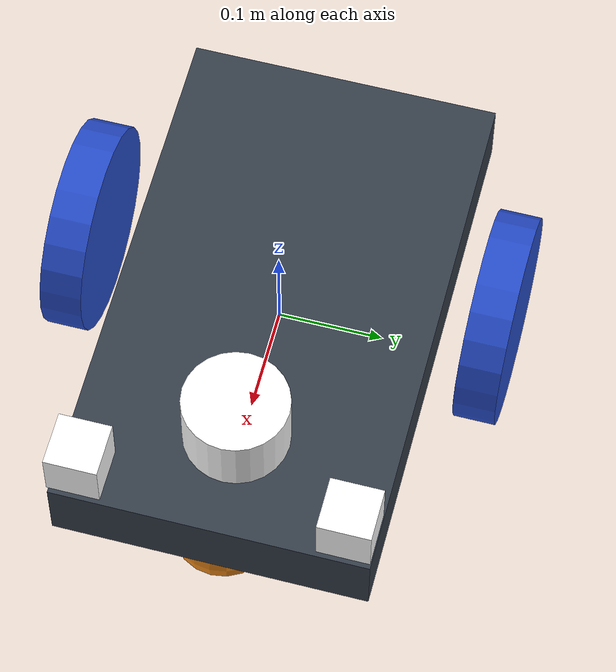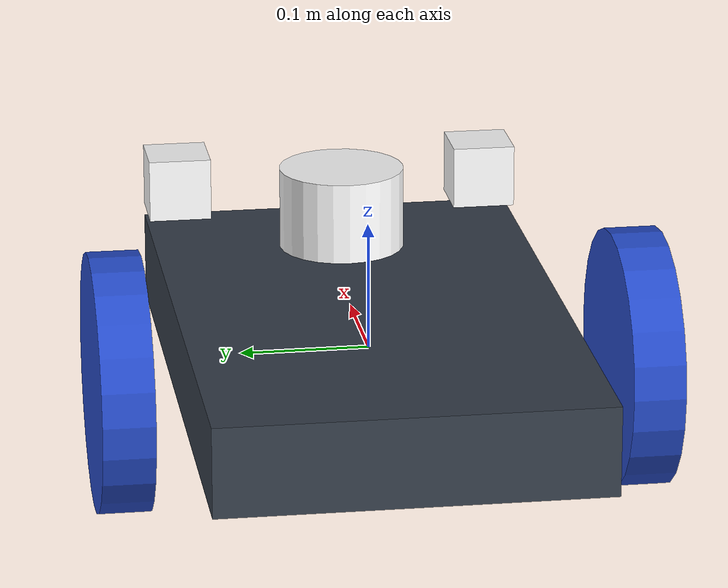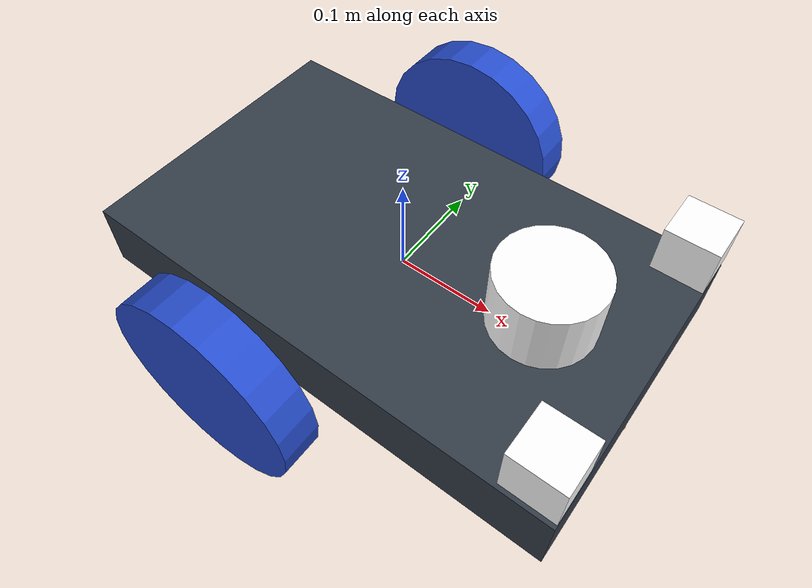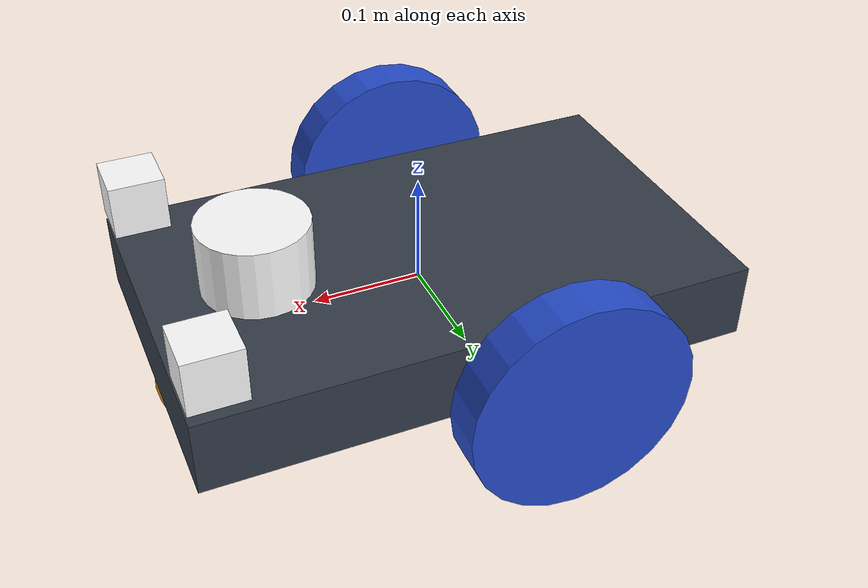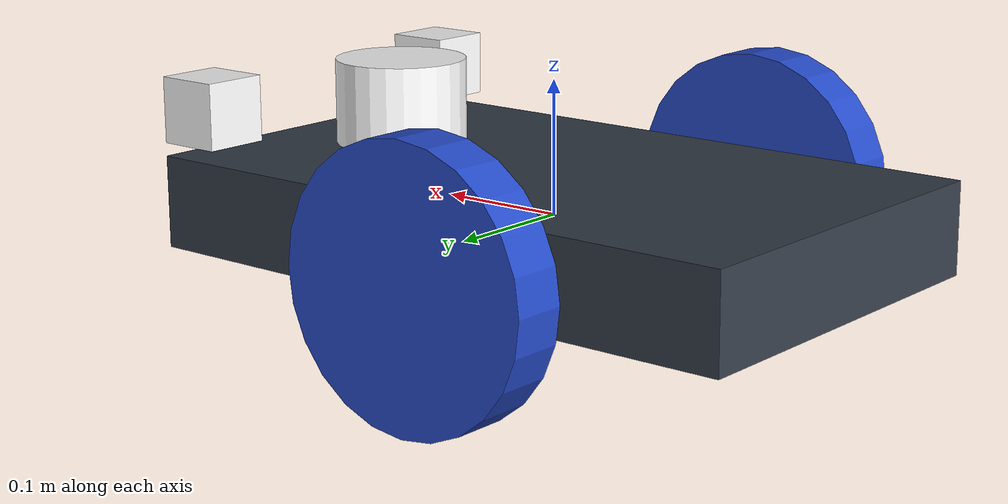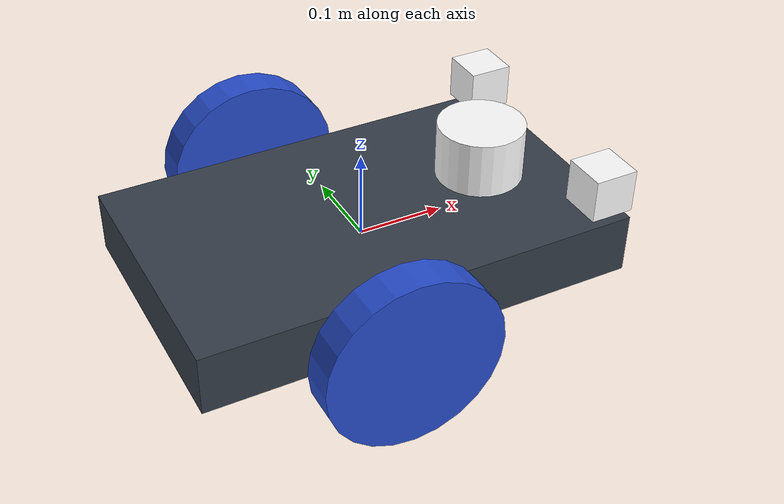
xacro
<?xml version="1.0" ?>
<robot name="m2wr"
    xmlns:xacro="http://www.ros.org/wiki/xacro">

    <xacro:include filename="$(find m2wr_description)/urdf/materials.xacro" />
    <xacro:include filename="$(find m2wr_description)/urdf/m2wr_manual.gazebo" />
    <xacro:include filename="$(find m2wr_description)/urdf/macros.xacro" />

    <link name="link_chassis">
        <!-- pose and inertial -->
        <pose>0 0 0.1 0 0 0</pose>
        <inertial>
            <mass value="5"/>
            <origin rpy="0 0 0" xyz="0 0 0.1"/>
            <inertia ixx="0.0395416666667" ixy="0" ixz="0" iyy="0.106208333333" iyz="0" izz="0.106208333333"/>
        </inertial>
        <!-- body -->
        <collision name="collision_chassis">
            <geometry>
                <box size="0.5 0.3 0.07"/>
            </geometry>
        </collision>
        <visual>
            <origin rpy="0 0 0" xyz="0 0 0"/>
            <geometry>
                <box size="0.5 0.3 0.07"/>
            </geometry>
            <material name="blue"/>
        </visual>
        <!-- caster front -->
        <collision name="caster_front_collision">
            <origin rpy=" 0 0 0" xyz="0.35 0 -0.05"/>
            <geometry>
                <sphere radius="0.05"/>
            </geometry>
            <surface>
                <friction>
                    <ode>
                        <mu>0</mu>
                        <mu2>0</mu2>
                        <slip1>1.0</slip1>
                        <slip2>1.0</slip2>
                    </ode>
                </friction>
            </surface>
        </collision>
        <visual name="caster_front_visual">
            <origin rpy=" 0 0 0" xyz="0.2 0 -0.05"/>
            <geometry>
                <sphere radius="0.05"/>
            </geometry>
        </visual>
    </link>

    <link name="sensor_laser">
        <inertial>
            <origin xyz="0 0 0" rpy="0 0 0" />
            <mass value="1" />
            <xacro:cylinder_inertia mass="1" r="0.05" l="0.1" />
        </inertial>

        <visual>
            <origin xyz="0 0 0" rpy="0 0 0" />
            <geometry>
                <cylinder radius="0.05" length="0.1"/>
            </geometry>
            <material name="white" />
        </visual>

        <collision>
            <origin xyz="0 0 0" rpy="0 0 0"/>
            <geometry>
                <cylinder radius="0.05" length="0.1"/>
            </geometry>
        </collision>
    </link>

    <joint name="joint_sensor_laser" type="fixed">
        <origin xyz="0.15 0 0.05" rpy="0 0 0"/>
        <parent link="link_chassis"/>
        <child link="sensor_laser"/>
    </joint>

    <xacro:link_wheel name="link_right_wheel" />
    <xacro:joint_wheel name="joint_right_wheel" child="link_right_wheel" origin_xyz="-0.05 -0.20 0" />

    <xacro:link_wheel name="link_left_wheel" />
    <xacro:joint_wheel name="joint_left_wheel" child="link_left_wheel" origin_xyz="-0.05 0.20 0" />

    <link name="left_light_sensor">
        <inertial>
            <origin xyz="0 0 0" rpy="0 0 0" />
            <mass value="1" />
            <xacro:cylinder_inertia mass="1" r="0.05" l="0.1" />
        </inertial>

        <visual>
            <origin xyz="0 0 0" rpy="0 0 0" />
            <geometry>
                <box size="0.05 0.05 0.05"/>
            </geometry>
            <material name="white" />
        </visual>

    </link>

    <joint name="joint_left_light_sensor" type="fixed">
        <origin xyz="0.225 0.125 0.07" rpy="0 0 0"/>
        <parent link="link_chassis"/>
        <child link="left_light_sensor"/>
    </joint>

    <link name="right_light_sensor">
        <inertial>
            <origin xyz="0 0 0" rpy="0 0 0" />
            <mass value="1" />
            <xacro:cylinder_inertia mass="1" r="0.05" l="0.1" />
        </inertial>

        <visual>
            <origin xyz="0 0 0" rpy="0 0 0" />
            <geometry>
                <box size="0.05 0.05 0.05"/>
            </geometry>
            <material name="white" />
        </visual>

    </link>

    <joint name="joint_right_light_sensor" type="fixed">
        <origin xyz="0.225 -0.125 0.07" rpy="0 0 0"/>
        <parent link="link_chassis"/>
        <child link="right_light_sensor"/>
    </joint>

</robot>

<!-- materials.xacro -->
<robot xmlns:xacro="http://www.ros.org/wiki/xacro">
    <material name="black">
        <color rgba="0.0 0.0 0.0 1.0"/>
    </material>
    <material name="blue">
        <color rgba="0.203125 0.23828125 0.28515625 1.0"/>
    </material>
    <material name="green">
        <color rgba="0.0 0.8 0.0 1.0"/>
    </material>
    <material name="grey">
        <color rgba="0.2 0.2 0.2 1.0"/>
    </material>
    <material name="orange">
        <color rgba="1.0 0.423529411765 0.0392156862745 1.0"/>
    </material>
    <material name="brown">
        <color rgba="0.870588235294 0.811764705882 0.764705882353 1.0"/>
    </material>
    <material name="red">
        <color rgba="0.80078125 0.12890625 0.1328125 1.0"/>
    </material>
    <material name="white">
        <color rgba="1.0 1.0 1.0 1.0"/>
    </material>
</robot>

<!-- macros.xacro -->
<robot xmlns:xacro="http://www.ros.org/wiki/xacro">
    <xacro:macro name="link_wheel" params="name">
        <link name="${name}">
            <inertial>
                <mass value="0.2"/>
                <origin rpy="0 1.5707 1.5707" xyz="0 0 0"/>
                <inertia ixx="0.000526666666667" ixy="0" ixz="0" iyy="0.000526666666667" iyz="0" izz="0.001"/>
            </inertial>
            <collision name="link_right_wheel_collision">
                <origin rpy="0 1.5707 1.5707" xyz="0 0 0"/>
                <geometry>
                    <cylinder length="0.04" radius="0.1"/>
                </geometry>
                <surface>
                    <friction>
                        <ode>
                            <mu>1.0</mu>
                            <mu2>1.0</mu2>
                        </ode>
                    </friction>
                </surface>
            </collision>
            <visual name="${name}_visual">
                <origin rpy="0 1.5707 1.5707" xyz="0 0 0"/>
                <geometry>
                    <cylinder length="0.04" radius="0.1"/>
                </geometry>
            </visual>
        </link>
    </xacro:macro>

    <xacro:macro name="joint_wheel" params="name child origin_xyz">
        <joint name="${name}" type="continuous">
            <origin rpy="0 0 0" xyz="${origin_xyz}"/>
            <child link="${child}"/>
            <parent link="link_chassis"/>
            <axis rpy="0 0 0" xyz="0 1 0"/>
            <limit effort="10000" velocity="1000"/>
        </joint>
    </xacro:macro>

    <xacro:macro name="cylinder_inertia" params="mass r l">
        <inertia ixx="${mass*(3*r*r+l*l)/12}" ixy = "0" ixz = "0" iyy="${mass*(3*r*r+l*l)/12}" iyz = "0" izz="${mass*(r*r)/2}" />
    </xacro:macro>

</robot>
